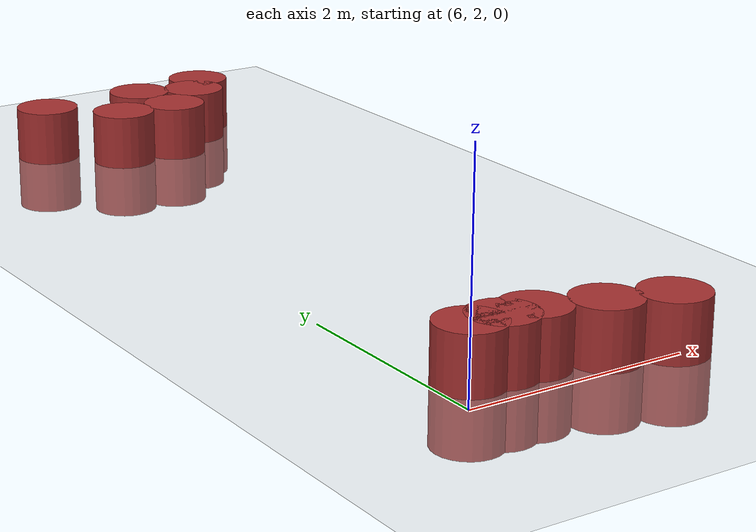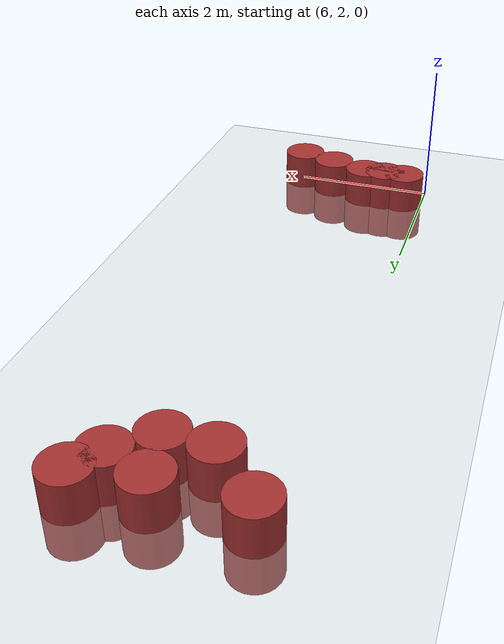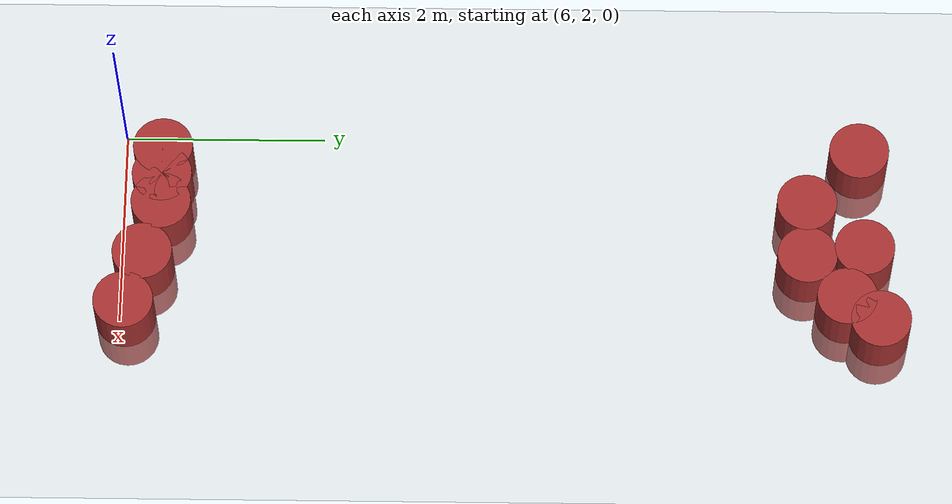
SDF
<sdf version="1.6">
 <world name="default">
  <model name="ground_plane">
   <static>1</static>
   <link name="link">
    <collision name="collision">
     <geometry><plane><normal>0 0 1</normal><size>100 100</size></plane></geometry>
     <surface><friction><ode><mu>100</mu><mu2>50</mu2></ode></friction></surface>
    </collision>
    <visual name="visual">
     <cast_shadows>0</cast_shadows>
     <geometry><plane><normal>0 0 1</normal><size>100 100</size></plane></geometry>
     <material>
      <script><uri>file://media/materials/scripts/gazebo.material</uri><name>Gazebo/Grey</name></script>
     </material>
    </visual>
   </link>
  </model>
  <model name="unit_cylinder_31">
   <static>1</static>
   <pose>7.97845 2.06635 0 0 -0 0</pose>
   <link name="link">
    <inertial>
     <mass>1</mass>
     <inertia><ixx>0.145833</ixx><ixy>0</ixy><ixz>0</ixz><iyy>0.145833</iyy><iyz>0</iyz><izz>0.125</izz></inertia>
    </inertial>
    <collision name="collision">
     <geometry><cylinder><radius>0.3</radius><length>1</length></cylinder></geometry>
    </collision>
    <visual name="visual">
     <geometry><cylinder><radius>0.3</radius><length>1</length></cylinder></geometry>
     <material><ambient>0.648 0.192 0.192 1</ambient><diffuse>0.648 0.192 0.192 1</diffuse></material>
     <material>
      <script><name>Gazebo/Grey</name><uri>file://media/materials/scripts/gazebo.material</uri></script>
     </material>
    </visual>
   </link>
  </model>
  <model name="unit_cylinder_51">
   <static>1</static>
   <pose>6.27683 9.38692 0 0 -0 0</pose>
   <link name="link">
    <inertial>
     <mass>1</mass>
     <inertia><ixx>0.145833</ixx><ixy>0</ixy><ixz>0</ixz><iyy>0.145833</iyy><iyz>0</iyz><izz>0.125</izz></inertia>
    </inertial>
    <collision name="collision">
     <geometry><cylinder><radius>0.3</radius><length>1</length></cylinder></geometry>
    </collision>
    <visual name="visual">
     <geometry><cylinder><radius>0.3</radius><length>1</length></cylinder></geometry>
     <material><ambient>0.648 0.192 0.192 1</ambient><diffuse>0.648 0.192 0.192 1</diffuse></material>
     <material>
      <script><name>Gazebo/Grey</name><uri>file://media/materials/scripts/gazebo.material</uri></script>
     </material>
    </visual>
   </link>
  </model>
  <model name="unit_cylinder_54">
   <static>1</static>
   <pose>6.84905 8.85668 0 0 -0 0</pose>
   <link name="link">
    <inertial>
     <mass>1</mass>
     <inertia><ixx>0.145833</ixx><ixy>0</ixy><ixz>0</ixz><iyy>0.145833</iyy><iyz>0</iyz><izz>0.125</izz></inertia>
    </inertial>
    <collision name="collision">
     <geometry><cylinder><radius>0.3</radius><length>1</length></cylinder></geometry>
    </collision>
    <visual name="visual">
     <geometry><cylinder><radius>0.3</radius><length>1</length></cylinder></geometry>
     <material><ambient>0.648 0.192 0.192 1</ambient><diffuse>0.648 0.192 0.192 1</diffuse></material>
     <material>
      <script><name>Gazebo/Grey</name><uri>file://media/materials/scripts/gazebo.material</uri></script>
     </material>
    </visual>
   </link>
  </model>
  <model name="unit_cylinder_56">
   <static>1</static>
   <pose>7.41842 8.85559 0 0 -0 0</pose>
   <link name="link">
    <inertial>
     <mass>1</mass>
     <inertia><ixx>0.145833</ixx><ixy>0</ixy><ixz>0</ixz><iyy>0.145833</iyy><iyz>0</iyz><izz>0.125</izz></inertia>
    </inertial>
    <collision name="collision">
     <geometry><cylinder><radius>0.3</radius><length>1</length></cylinder></geometry>
    </collision>
    <visual name="visual">
     <geometry><cylinder><radius>0.3</radius><length>1</length></cylinder></geometry>
     <material><ambient>0.648 0.192 0.192 1</ambient><diffuse>0.648 0.192 0.192 1</diffuse></material>
     <material>
      <script><name>Gazebo/Grey</name><uri>file://media/materials/scripts/gazebo.material</uri></script>
     </material>
    </visual>
   </link>
  </model>
  <model name="unit_cylinder_57">
   <static>1</static>
   <pose>7.32882 9.42661 0 0 -0 0</pose>
   <link name="link">
    <inertial>
     <mass>1</mass>
     <inertia><ixx>0.145833</ixx><ixy>0</ixy><ixz>0</ixz><iyy>0.145833</iyy><iyz>0</iyz><izz>0.125</izz></inertia>
    </inertial>
    <collision name="collision">
     <geometry><cylinder><radius>0.3</radius><length>1</length></cylinder></geometry>
    </collision>
    <visual name="visual">
     <geometry><cylinder><radius>0.3</radius><length>1</length></cylinder></geometry>
     <material><ambient>0.648 0.192 0.192 1</ambient><diffuse>0.648 0.192 0.192 1</diffuse></material>
     <material>
      <script><name>Gazebo/Grey</name><uri>file://media/materials/scripts/gazebo.material</uri></script>
     </material>
    </visual>
   </link>
  </model>
  <model name="unit_cylinder_61">
   <static>1</static>
   <pose>6.3 2.4 0 0 -0 0</pose>
   <link name="link">
    <inertial>
     <mass>1</mass>
     <inertia><ixx>0.145833</ixx><ixy>0</ixy><ixz>0</ixz><iyy>0.145833</iyy><iyz>0</iyz><izz>0.125</izz></inertia>
    </inertial>
    <collision name="collision">
     <geometry><cylinder><radius>0.3</radius><length>1</length></cylinder></geometry>
    </collision>
    <visual name="visual">
     <geometry><cylinder><radius>0.3</radius><length>1</length></cylinder></geometry>
     <material><ambient>0.648 0.192 0.192 1</ambient><diffuse>0.648 0.192 0.192 1</diffuse></material>
     <material>
      <script><name>Gazebo/Grey</name><uri>file://media/materials/scripts/gazebo.material</uri></script>
     </material>
    </visual>
   </link>
  </model>
  <model name="unit_cylinder_64">
   <static>1</static>
   <pose>7.44911 2.23405 0 0 -0 0</pose>
   <link name="link">
    <inertial>
     <mass>1</mass>
     <inertia><ixx>0.145833</ixx><ixy>0</ixy><ixz>0</ixz><iyy>0.145833</iyy><iyz>0</iyz><izz>0.125</izz></inertia>
    </inertial>
    <collision name="collision">
     <geometry><cylinder><radius>0.3</radius><length>1</length></cylinder></geometry>
    </collision>
    <visual name="visual">
     <geometry><cylinder><radius>0.3</radius><length>1</length></cylinder></geometry>
     <material><ambient>0.648 0.192 0.192 1</ambient><diffuse>0.648 0.192 0.192 1</diffuse></material>
     <material>
      <script><name>Gazebo/Grey</name><uri>file://media/materials/scripts/gazebo.material</uri></script>
     </material>
    </visual>
   </link>
  </model>
  <model name="unit_cylinder_65">
   <static>1</static>
   <pose>6.6 2.4 0 0 -0 0</pose>
   <link name="link">
    <inertial>
     <mass>1</mass>
     <inertia><ixx>0.145833</ixx><ixy>0</ixy><ixz>0</ixz><iyy>0.145833</iyy><iyz>0</iyz><izz>0.125</izz></inertia>
    </inertial>
    <collision name="collision">
     <geometry><cylinder><radius>0.3</radius><length>1</length></cylinder></geometry>
    </collision>
    <visual name="visual">
     <geometry><cylinder><radius>0.3</radius><length>1</length></cylinder></geometry>
     <material><ambient>0.648 0.192 0.192 1</ambient><diffuse>0.648 0.192 0.192 1</diffuse></material>
     <material>
      <script><name>Gazebo/Grey</name><uri>file://media/materials/scripts/gazebo.material</uri></script>
     </material>
    </visual>
   </link>
  </model>
  <model name="unit_cylinder_68">
   <static>1</static>
   <pose>6.9 2.4 0 0 -0 0</pose>
   <link name="link">
    <inertial>
     <mass>1</mass>
     <inertia><ixx>0.145833</ixx><ixy>0</ixy><ixz>0</ixz><iyy>0.145833</iyy><iyz>0</iyz><izz>0.125</izz></inertia>
    </inertial>
    <collision name="collision">
     <geometry><cylinder><radius>0.3</radius><length>1</length></cylinder></geometry>
    </collision>
    <visual name="visual">
     <geometry><cylinder><radius>0.3</radius><length>1</length></cylinder></geometry>
     <material><ambient>0.648 0.192 0.192 1</ambient><diffuse>0.648 0.192 0.192 1</diffuse></material>
     <material>
      <script><name>Gazebo/Grey</name><uri>file://media/materials/scripts/gazebo.material</uri></script>
     </material>
    </visual>
   </link>
  </model>
  <model name="unit_cylinder_80">
   <static>1</static>
   <pose>7.8596 9.24358 0 0 -0 0</pose>
   <link name="link">
    <inertial>
     <mass>1</mass>
     <inertia><ixx>0.145833</ixx><ixy>0</ixy><ixz>0</ixz><iyy>0.145833</iyy><iyz>0</iyz><izz>0.125</izz></inertia>
    </inertial>
    <collision name="collision">
     <geometry><cylinder><radius>0.3</radius><length>1</length></cylinder></geometry>
    </collision>
    <visual name="visual">
     <geometry><cylinder><radius>0.3</radius><length>1</length></cylinder></geometry>
     <material><ambient>0.648 0.192 0.192 1</ambient><diffuse>0.648 0.192 0.192 1</diffuse></material>
     <material>
      <script><name>Gazebo/Grey</name><uri>file://media/materials/scripts/gazebo.material</uri></script>
     </material>
    </visual>
   </link>
  </model>
  <model name="unit_cylinder_83">
   <static>1</static>
   <pose>8.09771 9.57615 0 0 -0 0</pose>
   <link name="link">
    <inertial>
     <mass>1</mass>
     <inertia><ixx>0.145833</ixx><ixy>0</ixy><ixz>0</ixz><iyy>0.145833</iyy><iyz>0</iyz><izz>0.125</izz></inertia>
    </inertial>
    <collision name="collision">
     <geometry><cylinder><radius>0.3</radius><length>1</length></cylinder></geometry>
    </collision>
    <visual name="visual">
     <geometry><cylinder><radius>0.3</radius><length>1</length></cylinder></geometry>
     <material><ambient>0.648 0.192 0.192 1</ambient><diffuse>0.648 0.192 0.192 1</diffuse></material>
     <material>
      <script><name>Gazebo/Grey</name><uri>file://media/materials/scripts/gazebo.material</uri></script>
     </material>
    </visual>
   </link>
  </model>
 </world>
</sdf>
